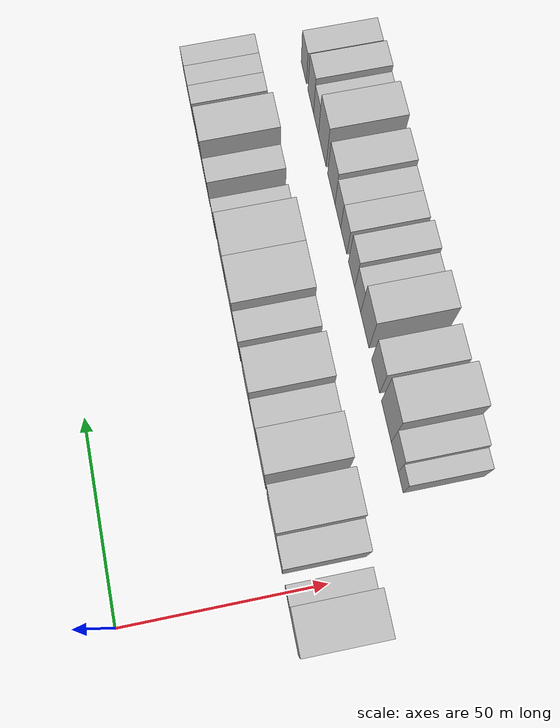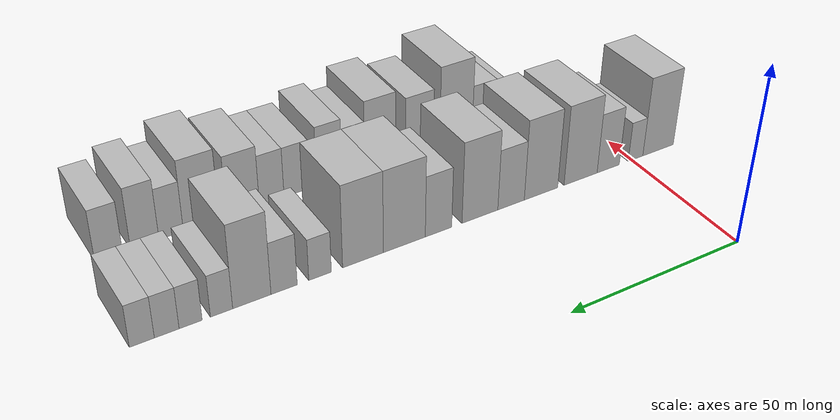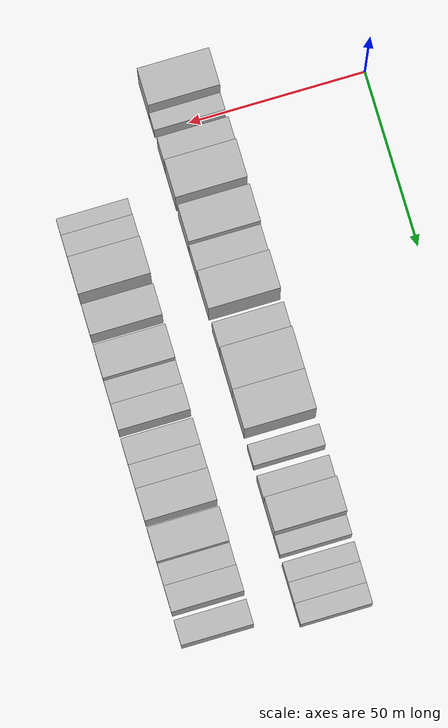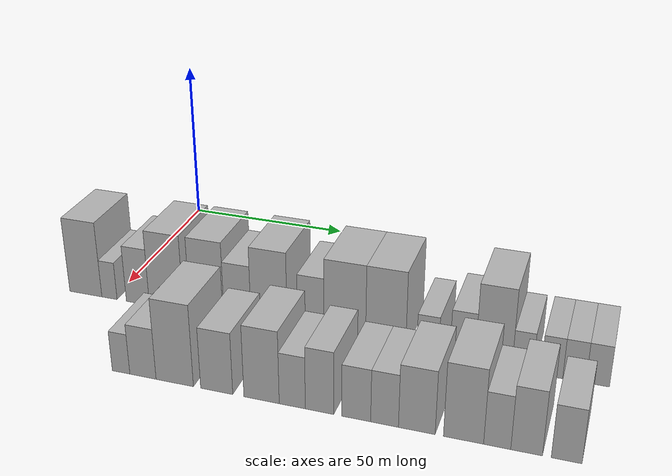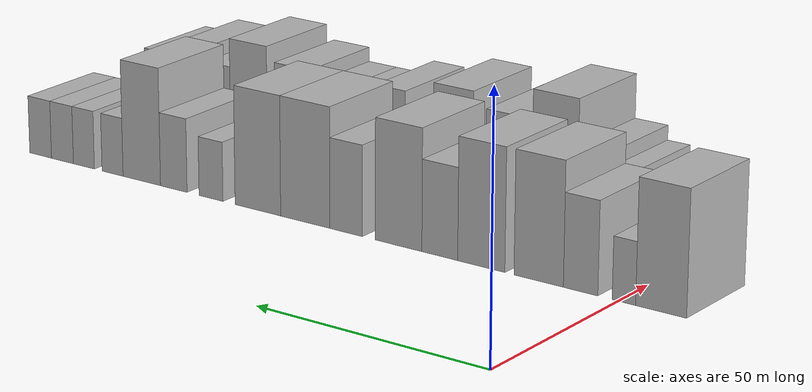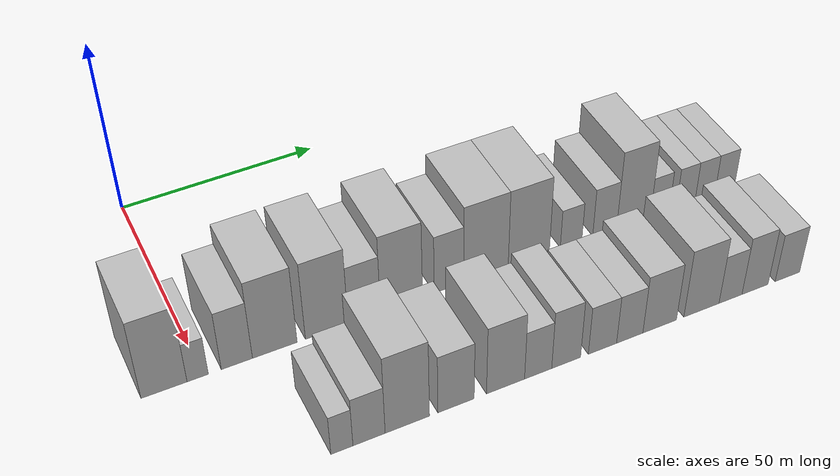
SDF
<sdf version="1.6">
 <world name="default">
  <model name="building_31">
   <static>1</static>
   <pose>50.0000 -8.8309 0 0.000000 0.000000 0.000000</pose>
   <link name="link">
    <pose>0 0 12.00 0 0 0</pose>
    <collision name="collision"><geometry><box><size>20.0000 10.4532 24.0000</size></box></geometry></collision>
    <visual name="visual">
     <cast_shadows>0</cast_shadows>
     <geometry><box><size>20.0000 10.4532 24.0000</size></box></geometry>
     <material>
      <script>
       <uri>model://HANNAS_wall/materials/scripts</uri>
       <uri>model://HANNAS_wall/materials/textures</uri>
       <name>vrc/HANNAS_wall</name>
      </script>
     </material>
    </visual>
   </link>
  </model>
  <model name="building_32">
   <static>1</static>
   <pose>50.0000 -1.1557 0 0.000000 0.000000 0.000000</pose>
   <link name="link">
    <pose>0 0 6.00 0 0 0</pose>
    <collision name="collision"><geometry><box><size>20.0000 4.8971 12.0000</size></box></geometry></collision>
    <visual name="visual">
     <cast_shadows>0</cast_shadows>
     <geometry><box><size>20.0000 4.8971 12.0000</size></box></geometry>
     <material>
      <script>
       <uri>model://HANNAS_wall/materials/scripts</uri>
       <uri>model://HANNAS_wall/materials/textures</uri>
       <name>vrc/HANNAS_wall</name>
      </script>
     </material>
    </visual>
   </link>
  </model>
  <model name="building_33">
   <static>1</static>
   <pose>50.0000 7.9484 0 0.000000 0.000000 0.000000</pose>
   <link name="link">
    <pose>0 0 9.00 0 0 0</pose>
    <collision name="collision"><geometry><box><size>20.0000 7.3112 18.0000</size></box></geometry></collision>
    <visual name="visual">
     <cast_shadows>0</cast_shadows>
     <geometry><box><size>20.0000 7.3112 18.0000</size></box></geometry>
     <material>
      <script>
       <uri>model://HANNAS_wall/materials/scripts</uri>
       <uri>model://HANNAS_wall/materials/textures</uri>
       <name>vrc/HANNAS_wall</name>
      </script>
     </material>
    </visual>
   </link>
  </model>
  <model name="building_34">
   <static>1</static>
   <pose>50.0000 16.9295 0 0.000000 0.000000 0.000000</pose>
   <link name="link">
    <pose>0 0 12.00 0 0 0</pose>
    <collision name="collision"><geometry><box><size>20.0000 10.6510 24.0000</size></box></geometry></collision>
    <visual name="visual">
     <cast_shadows>0</cast_shadows>
     <geometry><box><size>20.0000 10.6510 24.0000</size></box></geometry>
     <material>
      <script>
       <uri>model://HANNAS_wall/materials/scripts</uri>
       <uri>model://HANNAS_wall/materials/textures</uri>
       <name>vrc/HANNAS_wall</name>
      </script>
     </material>
    </visual>
   </link>
  </model>
  <model name="building_35">
   <static>1</static>
   <pose>50.0000 29.4713 0 0.000000 0.000000 0.000000</pose>
   <link name="link">
    <pose>0 0 12.00 0 0 0</pose>
    <collision name="collision"><geometry><box><size>20.0000 10.4326 24.0000</size></box></geometry></collision>
    <visual name="visual">
     <cast_shadows>0</cast_shadows>
     <geometry><box><size>20.0000 10.4326 24.0000</size></box></geometry>
     <material>
      <script>
       <uri>model://HANNAS_wall/materials/scripts</uri>
       <uri>model://HANNAS_wall/materials/textures</uri>
       <name>vrc/HANNAS_wall</name>
      </script>
     </material>
    </visual>
   </link>
  </model>
  <model name="building_36">
   <static>1</static>
   <pose>50.0000 38.7180 0 0.000000 0.000000 0.000000</pose>
   <link name="link">
    <pose>0 0 9.00 0 0 0</pose>
    <collision name="collision"><geometry><box><size>20.0000 8.0610 18.0000</size></box></geometry></collision>
    <visual name="visual">
     <cast_shadows>0</cast_shadows>
     <geometry><box><size>20.0000 8.0610 18.0000</size></box></geometry>
     <material>
      <script>
       <uri>model://HANNAS_wall/materials/scripts</uri>
       <uri>model://HANNAS_wall/materials/textures</uri>
       <name>vrc/HANNAS_wall</name>
      </script>
     </material>
    </visual>
   </link>
  </model>
  <model name="building_37">
   <static>1</static>
   <pose>50.0000 48.0742 0 0.000000 0.000000 0.000000</pose>
   <link name="link">
    <pose>0 0 12.00 0 0 0</pose>
    <collision name="collision"><geometry><box><size>20.0000 10.6514 24.0000</size></box></geometry></collision>
    <visual name="visual">
     <cast_shadows>0</cast_shadows>
     <geometry><box><size>20.0000 10.6514 24.0000</size></box></geometry>
     <material>
      <script>
       <uri>model://HANNAS_wall/materials/scripts</uri>
       <uri>model://HANNAS_wall/materials/textures</uri>
       <name>vrc/HANNAS_wall</name>
      </script>
     </material>
    </visual>
   </link>
  </model>
  <model name="building_38">
   <static>1</static>
   <pose>50.0000 60.2064 0 0.000000 0.000000 0.000000</pose>
   <link name="link">
    <pose>0 0 9.00 0 0 0</pose>
    <collision name="collision"><geometry><box><size>20.0000 7.6129 18.0000</size></box></geometry></collision>
    <visual name="visual">
     <cast_shadows>0</cast_shadows>
     <geometry><box><size>20.0000 7.6129 18.0000</size></box></geometry>
     <material>
      <script>
       <uri>model://HANNAS_wall/materials/scripts</uri>
       <uri>model://HANNAS_wall/materials/textures</uri>
       <name>vrc/HANNAS_wall</name>
      </script>
     </material>
    </visual>
   </link>
  </model>
  <model name="building_39">
   <static>1</static>
   <pose>50.0000 69.8949 0 0.000000 0.000000 0.000000</pose>
   <link name="link">
    <pose>0 0 12.00 0 0 0</pose>
    <collision name="collision"><geometry><box><size>20.0000 11.7640 24.0000</size></box></geometry></collision>
    <visual name="visual">
     <cast_shadows>0</cast_shadows>
     <geometry><box><size>20.0000 11.7640 24.0000</size></box></geometry>
     <material>
      <script>
       <uri>model://HANNAS_wall/materials/scripts</uri>
       <uri>model://HANNAS_wall/materials/textures</uri>
       <name>vrc/HANNAS_wall</name>
      </script>
     </material>
    </visual>
   </link>
  </model>
  <model name="building_40">
   <static>1</static>
   <pose>50.0000 81.3257 0 0.000000 0.000000 0.000000</pose>
   <link name="link">
    <pose>0 0 12.00 0 0 0</pose>
    <collision name="collision"><geometry><box><size>20.0000 11.0977 24.0000</size></box></geometry></collision>
    <visual name="visual">
     <cast_shadows>0</cast_shadows>
     <geometry><box><size>20.0000 11.0977 24.0000</size></box></geometry>
     <material>
      <script>
       <uri>model://HANNAS_wall/materials/scripts</uri>
       <uri>model://HANNAS_wall/materials/textures</uri>
       <name>vrc/HANNAS_wall</name>
      </script>
     </material>
    </visual>
   </link>
  </model>
  <model name="building_41">
   <static>1</static>
   <pose>50.0000 92.8498 0 0.000000 0.000000 0.000000</pose>
   <link name="link">
    <pose>0 0 6.00 0 0 0</pose>
    <collision name="collision"><geometry><box><size>20.0000 5.9505 12.0000</size></box></geometry></collision>
    <visual name="visual">
     <cast_shadows>0</cast_shadows>
     <geometry><box><size>20.0000 5.9505 12.0000</size></box></geometry>
     <material>
      <script>
       <uri>model://HANNAS_wall/materials/scripts</uri>
       <uri>model://HANNAS_wall/materials/textures</uri>
       <name>vrc/HANNAS_wall</name>
      </script>
     </material>
    </visual>
   </link>
  </model>
  <model name="building_42">
   <static>1</static>
   <pose>50.0000 102.1915 0 0.000000 0.000000 0.000000</pose>
   <link name="link">
    <pose>0 0 7.50 0 0 0</pose>
    <collision name="collision"><geometry><box><size>20.0000 6.7328 15.0000</size></box></geometry></collision>
    <visual name="visual">
     <cast_shadows>0</cast_shadows>
     <geometry><box><size>20.0000 6.7328 15.0000</size></box></geometry>
     <material>
      <script>
       <uri>model://HANNAS_wall/materials/scripts</uri>
       <uri>model://HANNAS_wall/materials/textures</uri>
       <name>vrc/HANNAS_wall</name>
      </script>
     </material>
    </visual>
   </link>
  </model>
  <model name="building_43">
   <static>1</static>
   <pose>50.0000 110.3665 0 0.000000 0.000000 0.000000</pose>
   <link name="link">
    <pose>0 0 12.00 0 0 0</pose>
    <collision name="collision"><geometry><box><size>20.0000 9.6173 24.0000</size></box></geometry></collision>
    <visual name="visual">
     <cast_shadows>0</cast_shadows>
     <geometry><box><size>20.0000 9.6173 24.0000</size></box></geometry>
     <material>
      <script>
       <uri>model://HANNAS_wall/materials/scripts</uri>
       <uri>model://HANNAS_wall/materials/textures</uri>
       <name>vrc/HANNAS_wall</name>
      </script>
     </material>
    </visual>
   </link>
  </model>
  <model name="building_44">
   <static>1</static>
   <pose>50.0000 117.9089 0 0.000000 0.000000 0.000000</pose>
   <link name="link">
    <pose>0 0 6.00 0 0 0</pose>
    <collision name="collision"><geometry><box><size>20.0000 5.4675 12.0000</size></box></geometry></collision>
    <visual name="visual">
     <cast_shadows>0</cast_shadows>
     <geometry><box><size>20.0000 5.4675 12.0000</size></box></geometry>
     <material>
      <script>
       <uri>model://HANNAS_wall/materials/scripts</uri>
       <uri>model://HANNAS_wall/materials/textures</uri>
       <name>vrc/HANNAS_wall</name>
      </script>
     </material>
    </visual>
   </link>
  </model>
  <model name="building_45">
   <static>1</static>
   <pose>50.0000 125.4124 0 0.000000 0.000000 0.000000</pose>
   <link name="link">
    <pose>0 0 6.00 0 0 0</pose>
    <collision name="collision"><geometry><box><size>20.0000 5.5394 12.0000</size></box></geometry></collision>
    <visual name="visual">
     <cast_shadows>0</cast_shadows>
     <geometry><box><size>20.0000 5.5394 12.0000</size></box></geometry>
     <material>
      <script>
       <uri>model://HANNAS_wall/materials/scripts</uri>
       <uri>model://HANNAS_wall/materials/textures</uri>
       <name>vrc/HANNAS_wall</name>
      </script>
     </material>
    </visual>
   </link>
  </model>
  <model name="building_46">
   <static>1</static>
   <pose>50.0000 131.1066 0 0.000000 0.000000 0.000000</pose>
   <link name="link">
    <pose>0 0 6.00 0 0 0</pose>
    <collision name="collision"><geometry><box><size>20.0000 5.8488 12.0000</size></box></geometry></collision>
    <visual name="visual">
     <cast_shadows>0</cast_shadows>
     <geometry><box><size>20.0000 5.8488 12.0000</size></box></geometry>
     <material>
      <script>
       <uri>model://HANNAS_wall/materials/scripts</uri>
       <uri>model://HANNAS_wall/materials/textures</uri>
       <name>vrc/HANNAS_wall</name>
      </script>
     </material>
    </visual>
   </link>
  </model>
  <model name="building_47">
   <static>1</static>
   <pose>50.0000 136.9455 0 0.000000 0.000000 0.000000</pose>
   <link name="link">
    <pose>0 0 6.00 0 0 0</pose>
    <collision name="collision"><geometry><box><size>20.0000 5.8291 12.0000</size></box></geometry></collision>
    <visual name="visual">
     <cast_shadows>0</cast_shadows>
     <geometry><box><size>20.0000 5.8291 12.0000</size></box></geometry>
     <material>
      <script>
       <uri>model://HANNAS_wall/materials/scripts</uri>
       <uri>model://HANNAS_wall/materials/textures</uri>
       <name>vrc/HANNAS_wall</name>
      </script>
     </material>
    </visual>
   </link>
  </model>
  <model name="building_95">
   <static>1</static>
   <pose>82.0000 19.4868 0 0.000000 0.000000 0.000000</pose>
   <link name="link">
    <pose>0 0 6.00 0 0 0</pose>
    <collision name="collision"><geometry><box><size>20.0000 5.0243 12.0000</size></box></geometry></collision>
    <visual name="visual">
     <cast_shadows>0</cast_shadows>
     <geometry><box><size>20.0000 5.0243 12.0000</size></box></geometry>
     <material>
      <script>
       <uri>model://HANNAS_wall/materials/scripts</uri>
       <uri>model://HANNAS_wall/materials/textures</uri>
       <name>vrc/HANNAS_wall</name>
      </script>
     </material>
    </visual>
   </link>
  </model>
  <model name="building_96">
   <static>1</static>
   <pose>82.0000 25.7106 0 0.000000 0.000000 0.000000</pose>
   <link name="link">
    <pose>0 0 7.50 0 0 0</pose>
    <collision name="collision"><geometry><box><size>20.0000 7.4233 15.0000</size></box></geometry></collision>
    <visual name="visual">
     <cast_shadows>0</cast_shadows>
     <geometry><box><size>20.0000 7.4233 15.0000</size></box></geometry>
     <material>
      <script>
       <uri>model://HANNAS_wall/materials/scripts</uri>
       <uri>model://HANNAS_wall/materials/textures</uri>
       <name>vrc/HANNAS_wall</name>
      </script>
     </material>
    </visual>
   </link>
  </model>
  <model name="building_97">
   <static>1</static>
   <pose>82.0000 34.6223 0 0.000000 0.000000 0.000000</pose>
   <link name="link">
    <pose>0 0 12.00 0 0 0</pose>
    <collision name="collision"><geometry><box><size>20.0000 10.4001 24.0000</size></box></geometry></collision>
    <visual name="visual">
     <cast_shadows>0</cast_shadows>
     <geometry><box><size>20.0000 10.4001 24.0000</size></box></geometry>
     <material>
      <script>
       <uri>model://HANNAS_wall/materials/scripts</uri>
       <uri>model://HANNAS_wall/materials/textures</uri>
       <name>vrc/HANNAS_wall</name>
      </script>
     </material>
    </visual>
   </link>
  </model>
  <model name="building_98">
   <static>1</static>
   <pose>82.0000 46.1808 0 0.000000 0.000000 0.000000</pose>
   <link name="link">
    <pose>0 0 9.00 0 0 0</pose>
    <collision name="collision"><geometry><box><size>20.0000 8.7170 18.0000</size></box></geometry></collision>
    <visual name="visual">
     <cast_shadows>0</cast_shadows>
     <geometry><box><size>20.0000 8.7170 18.0000</size></box></geometry>
     <material>
      <script>
       <uri>model://HANNAS_wall/materials/scripts</uri>
       <uri>model://HANNAS_wall/materials/textures</uri>
       <name>vrc/HANNAS_wall</name>
      </script>
     </material>
    </visual>
   </link>
  </model>
  <model name="building_99">
   <static>1</static>
   <pose>82.0000 58.2234 0 0.000000 0.000000 0.000000</pose>
   <link name="link">
    <pose>0 0 10.50 0 0 0</pose>
    <collision name="collision"><geometry><box><size>20.0000 9.3681 21.0000</size></box></geometry></collision>
    <visual name="visual">
     <cast_shadows>0</cast_shadows>
     <geometry><box><size>20.0000 9.3681 21.0000</size></box></geometry>
     <material>
      <script>
       <uri>model://HANNAS_wall/materials/scripts</uri>
       <uri>model://HANNAS_wall/materials/textures</uri>
       <name>vrc/HANNAS_wall</name>
      </script>
     </material>
    </visual>
   </link>
  </model>
  <model name="building_100">
   <static>1</static>
   <pose>82.0000 66.3104 0 0.000000 0.000000 0.000000</pose>
   <link name="link">
    <pose>0 0 7.50 0 0 0</pose>
    <collision name="collision"><geometry><box><size>20.0000 6.8059 15.0000</size></box></geometry></collision>
    <visual name="visual">
     <cast_shadows>0</cast_shadows>
     <geometry><box><size>20.0000 6.8059 15.0000</size></box></geometry>
     <material>
      <script>
       <uri>model://HANNAS_wall/materials/scripts</uri>
       <uri>model://HANNAS_wall/materials/textures</uri>
       <name>vrc/HANNAS_wall</name>
      </script>
     </material>
    </visual>
   </link>
  </model>
  <model name="building_101">
   <static>1</static>
   <pose>82.0000 73.3747 0 0.000000 0.000000 0.000000</pose>
   <link name="link">
    <pose>0 0 9.00 0 0 0</pose>
    <collision name="collision"><geometry><box><size>20.0000 7.3228 18.0000</size></box></geometry></collision>
    <visual name="visual">
     <cast_shadows>0</cast_shadows>
     <geometry><box><size>20.0000 7.3228 18.0000</size></box></geometry>
     <material>
      <script>
       <uri>model://HANNAS_wall/materials/scripts</uri>
       <uri>model://HANNAS_wall/materials/textures</uri>
       <name>vrc/HANNAS_wall</name>
      </script>
     </material>
    </visual>
   </link>
  </model>
  <model name="building_102">
   <static>1</static>
   <pose>82.0000 82.6854 0 0.000000 0.000000 0.000000</pose>
   <link name="link">
    <pose>0 0 7.50 0 0 0</pose>
    <collision name="collision"><geometry><box><size>20.0000 7.2987 15.0000</size></box></geometry></collision>
    <visual name="visual">
     <cast_shadows>0</cast_shadows>
     <geometry><box><size>20.0000 7.2987 15.0000</size></box></geometry>
     <material>
      <script>
       <uri>model://HANNAS_wall/materials/scripts</uri>
       <uri>model://HANNAS_wall/materials/textures</uri>
       <name>vrc/HANNAS_wall</name>
      </script>
     </material>
    </visual>
   </link>
  </model>
  <model name="building_103">
   <static>1</static>
   <pose>82.0000 89.7797 0 0.000000 0.000000 0.000000</pose>
   <link name="link">
    <pose>0 0 7.50 0 0 0</pose>
    <collision name="collision"><geometry><box><size>20.0000 6.8898 15.0000</size></box></geometry></collision>
    <visual name="visual">
     <cast_shadows>0</cast_shadows>
     <geometry><box><size>20.0000 6.8898 15.0000</size></box></geometry>
     <material>
      <script>
       <uri>model://HANNAS_wall/materials/scripts</uri>
       <uri>model://HANNAS_wall/materials/textures</uri>
       <name>vrc/HANNAS_wall</name>
      </script>
     </material>
    </visual>
   </link>
  </model>
  <model name="building_104">
   <static>1</static>
   <pose>82.0000 97.7027 0 0.000000 0.000000 0.000000</pose>
   <link name="link">
    <pose>0 0 9.00 0 0 0</pose>
    <collision name="collision"><geometry><box><size>20.0000 8.9562 18.0000</size></box></geometry></collision>
    <visual name="visual">
     <cast_shadows>0</cast_shadows>
     <geometry><box><size>20.0000 8.9562 18.0000</size></box></geometry>
     <material>
      <script>
       <uri>model://HANNAS_wall/materials/scripts</uri>
       <uri>model://HANNAS_wall/materials/textures</uri>
       <name>vrc/HANNAS_wall</name>
      </script>
     </material>
    </visual>
   </link>
  </model>
  <model name="building_105">
   <static>1</static>
   <pose>82.0000 108.9585 0 0.000000 0.000000 0.000000</pose>
   <link name="link">
    <pose>0 0 10.50 0 0 0</pose>
    <collision name="collision"><geometry><box><size>20.0000 9.5555 21.0000</size></box></geometry></collision>
    <visual name="visual">
     <cast_shadows>0</cast_shadows>
     <geometry><box><size>20.0000 9.5555 21.0000</size></box></geometry>
     <material>
      <script>
       <uri>model://HANNAS_wall/materials/scripts</uri>
       <uri>model://HANNAS_wall/materials/textures</uri>
       <name>vrc/HANNAS_wall</name>
      </script>
     </material>
    </visual>
   </link>
  </model>
  <model name="building_106">
   <static>1</static>
   <pose>82.0000 116.9124 0 0.000000 0.000000 0.000000</pose>
   <link name="link">
    <pose>0 0 7.50 0 0 0</pose>
    <collision name="collision"><geometry><box><size>20.0000 6.3523 15.0000</size></box></geometry></collision>
    <visual name="visual">
     <cast_shadows>0</cast_shadows>
     <geometry><box><size>20.0000 6.3523 15.0000</size></box></geometry>
     <material>
      <script>
       <uri>model://HANNAS_wall/materials/scripts</uri>
       <uri>model://HANNAS_wall/materials/textures</uri>
       <name>vrc/HANNAS_wall</name>
      </script>
     </material>
    </visual>
   </link>
  </model>
  <model name="building_107">
   <static>1</static>
   <pose>82.0000 123.7393 0 0.000000 0.000000 0.000000</pose>
   <link name="link">
    <pose>0 0 9.00 0 0 0</pose>
    <collision name="collision"><geometry><box><size>20.0000 7.3015 18.0000</size></box></geometry></collision>
    <visual name="visual">
     <cast_shadows>0</cast_shadows>
     <geometry><box><size>20.0000 7.3015 18.0000</size></box></geometry>
     <material>
      <script>
       <uri>model://HANNAS_wall/materials/scripts</uri>
       <uri>model://HANNAS_wall/materials/textures</uri>
       <name>vrc/HANNAS_wall</name>
      </script>
     </material>
    </visual>
   </link>
  </model>
  <model name="building_108">
   <static>1</static>
   <pose>82.0000 132.8763 0 0.000000 0.000000 0.000000</pose>
   <link name="link">
    <pose>0 0 7.50 0 0 0</pose>
    <collision name="collision"><geometry><box><size>20.0000 6.9724 15.0000</size></box></geometry></collision>
    <visual name="visual">
     <cast_shadows>0</cast_shadows>
     <geometry><box><size>20.0000 6.9724 15.0000</size></box></geometry>
     <material>
      <script>
       <uri>model://HANNAS_wall/materials/scripts</uri>
       <uri>model://HANNAS_wall/materials/textures</uri>
       <name>vrc/HANNAS_wall</name>
      </script>
     </material>
    </visual>
   </link>
  </model>
 </world>
</sdf>
